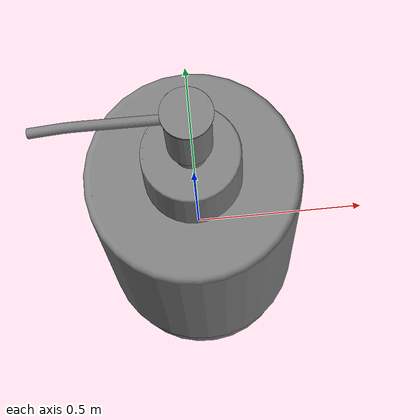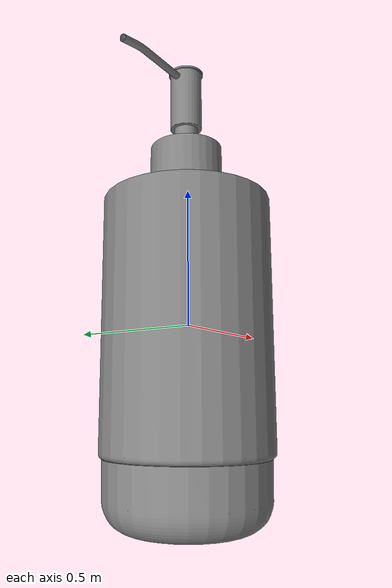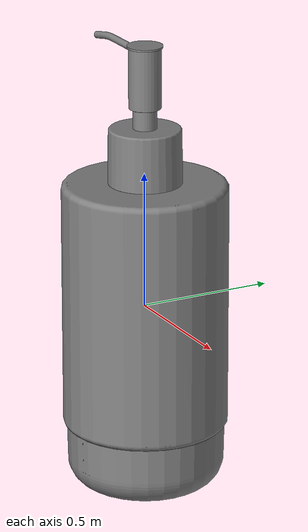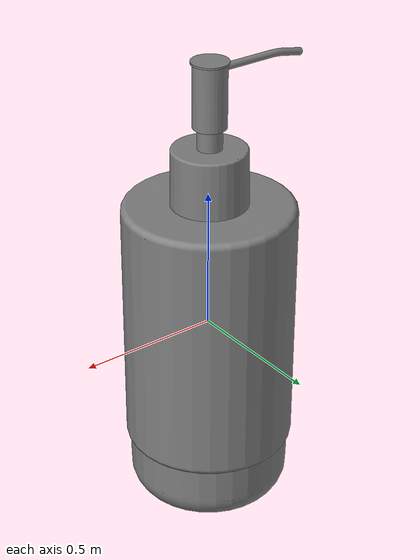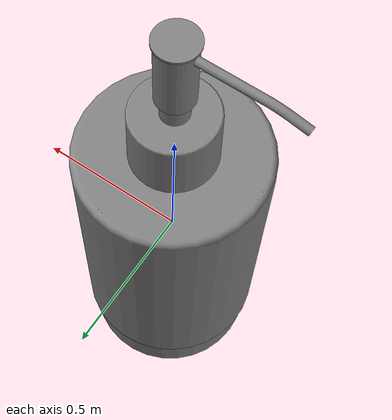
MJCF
<?xml version='1.0' encoding='UTF-8'?>
<mujoco model="partnet_61c16fac-185c-4b11-8627-0ff5da2e6bb1">
  <compiler angle="radian"/>
  <asset>
    <mesh name="original_2" content_type="model/obj" file="textured_objs/original_2.obj"/>
    <mesh name="original_6" content_type="model/obj" file="textured_objs/original_6.obj"/>
    <mesh name="original_8" content_type="model/obj" file="textured_objs/original_8.obj"/>
    <mesh name="original_11" content_type="model/obj" file="textured_objs/original_11.obj"/>
    <mesh name="original_10" content_type="model/obj" file="textured_objs/original_10.obj"/>
    <mesh name="original_7" content_type="model/obj" file="textured_objs/original_7.obj"/>
    <mesh name="original_4" content_type="model/obj" file="textured_objs/original_4.obj"/>
    <mesh name="original_5" content_type="model/obj" file="textured_objs/original_5.obj"/>
    <mesh name="original_1" content_type="model/obj" file="textured_objs/original_1.obj"/>
  </asset>
  <worldbody>
    <body name="base">
      <body name="link_2" quat="0.5 0.5 -0.5 -0.5">
        <geom type="mesh" mesh="original_4"/>
        <geom type="mesh" mesh="original_5"/>
        <geom type="mesh" mesh="original_1"/>
        <body name="link_1_helper" pos="-0.00491533 0 0.00179726">
          <inertial pos="0 0 0" mass="1e-06" diaginertia="1e-10 1e-10 1e-10"/>
          <joint name="joint_4" pos="0 0 0" axis="0 1 0" type="slide" range="0 0.02"/>
          <body name="link_1">
            <joint name="joint_1" pos="0 0 0" axis="0 -1 0"/>
            <geom pos="0.00491533 0 -0.00179726" quat="1 0 0 0" type="mesh" mesh="original_7"/>
            <body name="link_0_helper" pos="3.40687e-09 0 -9.87364e-08">
              <inertial pos="0 0 0" mass="1e-06" diaginertia="1e-10 1e-10 1e-10"/>
              <joint name="joint_3" pos="0 0 0" axis="0 -1 0" type="slide" range="0 0.08"/>
              <body name="link_0">
                <joint name="joint_0" pos="0 0 0" axis="0 1 0"/>
                <geom pos="0.00491532 0 -0.00179717" quat="1 0 0 0" type="mesh" mesh="original_2"/>
                <geom pos="0.00491532 0 -0.00179717" quat="1 0 0 0" type="mesh" mesh="original_6"/>
                <geom pos="0.00491532 0 -0.00179717" quat="1 0 0 0" type="mesh" mesh="original_8"/>
                <geom pos="0.00491532 0 -0.00179717" type="mesh" mesh="original_11"/>
                <geom pos="0.00491532 0 -0.00179717" type="mesh" mesh="original_10"/>
              </body>
            </body>
          </body>
        </body>
      </body>
    </body>
  </worldbody>
</mujoco>
